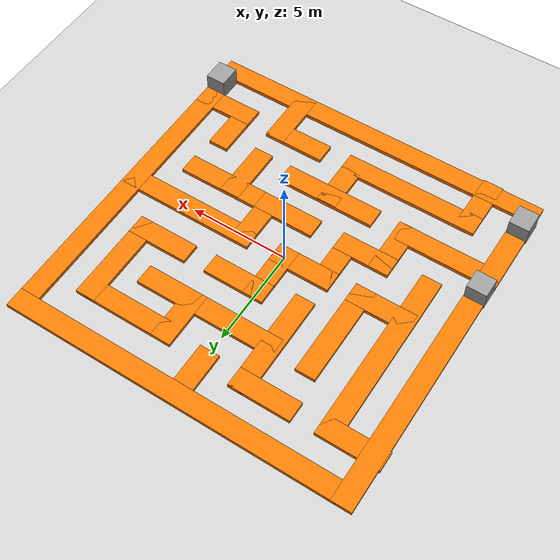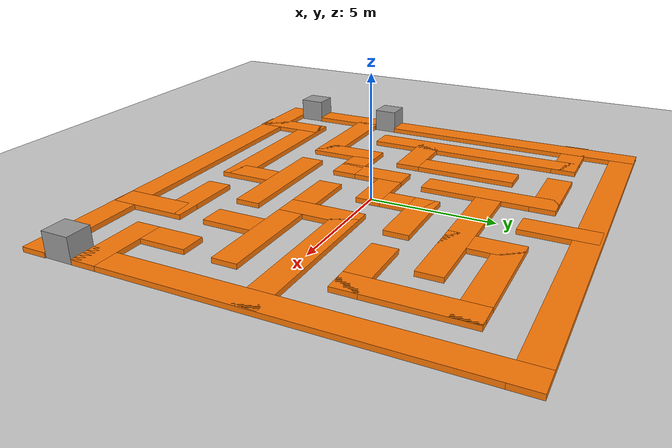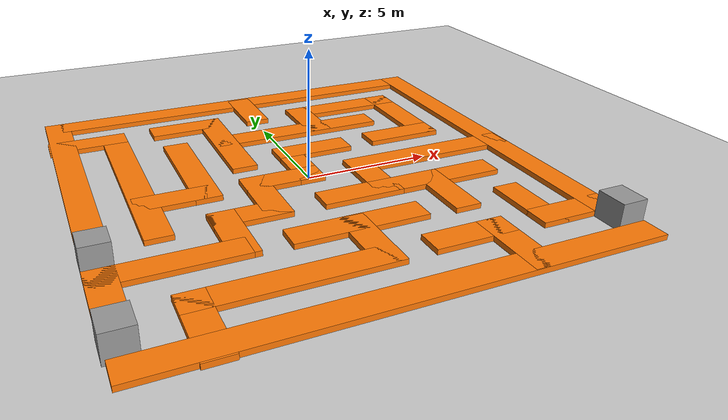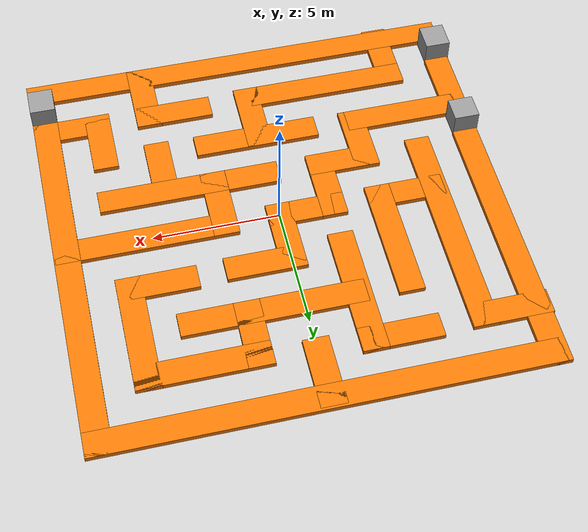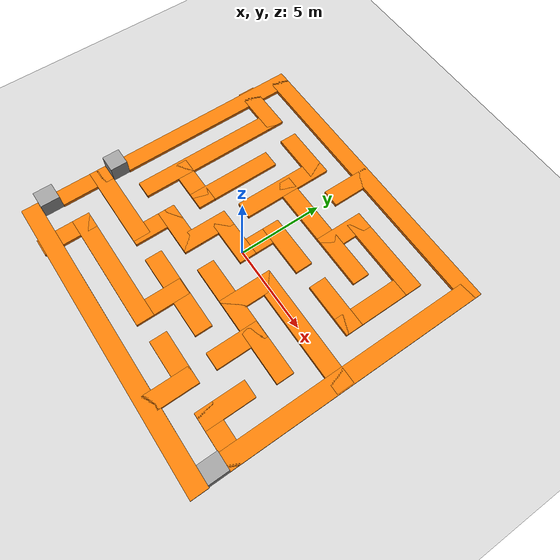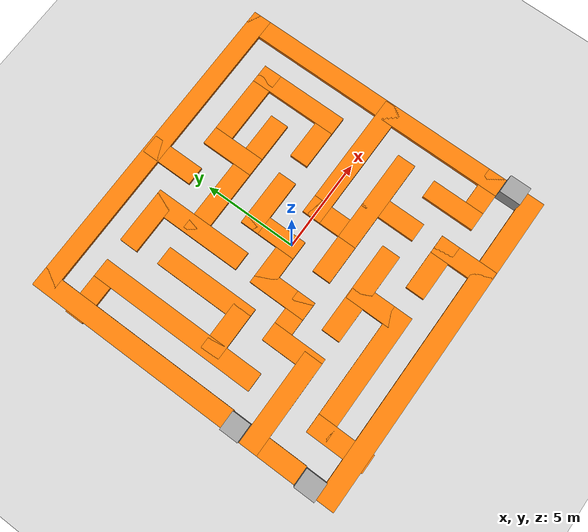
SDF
<sdf version="1.7">
 <world name="default">
  <model name="ground_plane">
   <static>1</static>
   <link name="link">
    <collision name="collision">
     <geometry><plane><normal>0 0 1</normal><size>100 100</size></plane></geometry>
     <surface><friction><ode><mu>100</mu><mu2>50</mu2></ode></friction></surface>
    </collision>
    <visual name="visual">
     <cast_shadows>0</cast_shadows>
     <geometry><plane><normal>0 0 1</normal><size>100 100</size></plane></geometry>
     <material>
      <script><uri>file://media/materials/scripts/gazebo.material</uri><name>Gazebo/Grey</name></script>
     </material>
    </visual>
   </link>
  </model>
  <model name="maze_1m_path">
   <pose>0.009148 0.01503 0 0 -0 0</pose>
   <link name="Wall_0">
    <collision name="Wall_0_Collision">
     <geometry><box><size>17.6001 1 0.2</size></box></geometry>
     <pose>0 0 0.1 0 -0 0</pose>
    </collision>
    <visual name="Wall_0_Visual">
     <pose>0 0 0.1 0 -0 0</pose>
     <geometry><box><size>17.6001 1 0.2</size></box></geometry>
     <material>
      <script><uri>file://media/materials/scripts/gazebo.material</uri><name>Gazebo/Grey</name></script>
      <ambient>0.996078 0.47451 0.0196078 1</ambient>
     </material>
     <meta><layer>0</layer></meta>
    </visual>
    <pose>0.010502 8.27796 0 0 -0 0</pose>
   </link>
   <link name="Wall_12">
    <collision name="Wall_12_Collision">
     <geometry><box><size>11.255 1 0.2</size></box></geometry>
     <pose>0 0 0.1 0 -0 0</pose>
    </collision>
    <visual name="Wall_12_Visual">
     <pose>0 0 0.1 0 -0 0</pose>
     <geometry><box><size>11.255 1 0.2</size></box></geometry>
     <material>
      <script><uri>file://media/materials/scripts/gazebo.material</uri><name>Gazebo/Grey</name></script>
      <ambient>0.996078 0.47451 0.0196078 1</ambient>
     </material>
     <meta><layer>0</layer></meta>
    </visual>
    <pose>-8.2895 3.15046 0 0 -0 -1.5708</pose>
   </link>
   <link name="Wall_16">
    <collision name="Wall_16_Collision">
     <geometry><box><size>3.10015 1 0.2</size></box></geometry>
     <pose>0 0 0.1 0 -0 0</pose>
    </collision>
    <visual name="Wall_16_Visual">
     <pose>0 0 0.1 0 -0 0</pose>
     <geometry><box><size>3.10015 1 0.2</size></box></geometry>
     <material>
      <script><uri>file://media/materials/scripts/gazebo.material</uri><name>Gazebo/Grey</name></script>
      <ambient>0.996078 0.47451 0.0196078 1</ambient>
     </material>
     <meta><layer>0</layer></meta>
    </visual>
    <pose>-8.3225 -5.04305 0 0 -0 -1.5708</pose>
   </link>
   <link name="Wall_18">
    <collision name="Wall_18_Collision">
     <geometry><box><size>5.1 1 0.2</size></box></geometry>
     <pose>0 0 0.1 0 -0 0</pose>
    </collision>
    <visual name="Wall_18_Visual">
     <pose>0 0 0.1 0 -0 0</pose>
     <geometry><box><size>5.1 1 0.2</size></box></geometry>
     <material>
      <script><uri>file://media/materials/scripts/gazebo.material</uri><name>Gazebo/Grey</name></script>
      <ambient>0.996078 0.47451 0.0196078 1</ambient>
     </material>
     <meta><layer>0</layer></meta>
    </visual>
    <pose>-6.2725 -3.99304 0 0 -0 0</pose>
   </link>
   <link name="Wall_2">
    <collision name="Wall_2_Collision">
     <geometry><box><size>15.35 1 0.2</size></box></geometry>
     <pose>0 0 0.1 0 -0 0</pose>
    </collision>
    <visual name="Wall_2_Visual">
     <pose>0 0 0.1 0 -0 0</pose>
     <geometry><box><size>15.35 1 0.2</size></box></geometry>
     <material>
      <script><uri>file://media/materials/scripts/gazebo.material</uri><name>Gazebo/Grey</name></script>
      <ambient>0.996078 0.47451 0.0196078 1</ambient>
     </material>
     <meta><layer>0</layer></meta>
    </visual>
    <pose>8.3105 1.10295 0 0 -0 -1.5708</pose>
   </link>
   <link name="Wall_23">
    <collision name="Wall_23_Collision">
     <geometry><box><size>3.10023 1 0.2</size></box></geometry>
     <pose>0 0 0.1 0 -0 0</pose>
    </collision>
    <visual name="Wall_23_Visual">
     <pose>0 0 0.1 0 -0 0</pose>
     <geometry><box><size>3.10023 1 0.2</size></box></geometry>
     <material>
      <script><uri>file://media/materials/scripts/gazebo.material</uri><name>Gazebo/Grey</name></script>
      <ambient>0.996078 0.47451 0.0196078 1</ambient>
     </material>
     <meta><layer>0</layer></meta>
    </visual>
    <pose>-7.2955 6.18295 0 0 -0 0</pose>
   </link>
   <link name="Wall_25">
    <collision name="Wall_25_Collision">
     <geometry><box><size>9.16 1 0.2</size></box></geometry>
     <pose>0 0 0.1 0 -0 0</pose>
    </collision>
    <visual name="Wall_25_Visual">
     <pose>0 0 0.1 0 -0 0</pose>
     <geometry><box><size>9.16 1 0.2</size></box></geometry>
     <material>
      <script><uri>file://media/materials/scripts/gazebo.material</uri><name>Gazebo/Grey</name></script>
      <ambient>0.996078 0.47451 0.0196078 1</ambient>
     </material>
     <meta><layer>0</layer></meta>
    </visual>
    <pose>-6.2455 2.10296 0 0 -0 -1.5708</pose>
   </link>
   <link name="Wall_27">
    <collision name="Wall_27_Collision">
     <geometry><box><size>3.10034 1 0.2</size></box></geometry>
     <pose>0 0 0.1 0 -0 0</pose>
    </collision>
    <visual name="Wall_27_Visual">
     <pose>0 0 0.1 0 -0 0</pose>
     <geometry><box><size>3.10034 1 0.2</size></box></geometry>
     <material>
      <script><uri>file://media/materials/scripts/gazebo.material</uri><name>Gazebo/Grey</name></script>
      <ambient>0.996078 0.47451 0.0196078 1</ambient>
     </material>
     <meta><layer>0</layer></meta>
    </visual>
    <pose>-5.0665 0.021955 0 0 -0 0</pose>
   </link>
   <link name="Wall_29">
    <collision name="Wall_29_Collision">
     <geometry><box><size>5.1 1 0.2</size></box></geometry>
     <pose>0 0 0.1 0 -0 0</pose>
    </collision>
    <visual name="Wall_29_Visual">
     <pose>0 0 0.1 0 -0 0</pose>
     <geometry><box><size>5.1 1 0.2</size></box></geometry>
     <material>
      <script><uri>file://media/materials/scripts/gazebo.material</uri><name>Gazebo/Grey</name></script>
      <ambient>0.996078 0.47451 0.0196078 1</ambient>
     </material>
     <meta><layer>0</layer></meta>
    </visual>
    <pose>-4.0165 2.07195 0 0 -0 1.5708</pose>
   </link>
   <link name="Wall_31">
    <collision name="Wall_31_Collision">
     <geometry><box><size>3.10035 1 0.2</size></box></geometry>
     <pose>0 0 0.1 0 -0 0</pose>
    </collision>
    <visual name="Wall_31_Visual">
     <pose>0 0 0.1 0 -0 0</pose>
     <geometry><box><size>3.10035 1 0.2</size></box></geometry>
     <material>
      <script><uri>file://media/materials/scripts/gazebo.material</uri><name>Gazebo/Grey</name></script>
      <ambient>0.996078 0.47451 0.0196078 1</ambient>
     </material>
     <meta><layer>0</layer></meta>
    </visual>
    <pose>-3.0965 6.28395 0 0 -0 0</pose>
   </link>
   <link name="Wall_33">
    <collision name="Wall_33_Collision">
     <geometry><box><size>5.35 1 0.2</size></box></geometry>
     <pose>0 0 0.1 0 -0 0</pose>
    </collision>
    <visual name="Wall_33_Visual">
     <pose>0 0 0.1 0 -0 0</pose>
     <geometry><box><size>5.35 1 0.2</size></box></geometry>
     <material>
      <script><uri>file://media/materials/scripts/gazebo.material</uri><name>Gazebo/Grey</name></script>
      <ambient>0.996078 0.47451 0.0196078 1</ambient>
     </material>
     <meta><layer>0</layer></meta>
    </visual>
    <pose>-2.0465 4.10895 0 0 -0 -1.5708</pose>
   </link>
   <link name="Wall_35">
    <collision name="Wall_35_Collision">
     <geometry><box><size>7.09997 1 0.2</size></box></geometry>
     <pose>0 0 0.1 0 -0 0</pose>
    </collision>
    <visual name="Wall_35_Visual">
     <pose>0 0 0.1 0 -0 0</pose>
     <geometry><box><size>7.09997 1 0.2</size></box></geometry>
     <material>
      <script><uri>file://media/materials/scripts/gazebo.material</uri><name>Gazebo/Grey</name></script>
      <ambient>0.996078 0.47451 0.0196078 1</ambient>
     </material>
     <meta><layer>0</layer></meta>
    </visual>
    <pose>1.1905 4.20895 0 0 -0 0</pose>
   </link>
   <link name="Wall_37">
    <collision name="Wall_37_Collision">
     <geometry><box><size>2.85006 1 0.2</size></box></geometry>
     <pose>0 0 0.1 0 -0 0</pose>
    </collision>
    <visual name="Wall_37_Visual">
     <pose>0 0 0.1 0 -0 0</pose>
     <geometry><box><size>2.85006 1 0.2</size></box></geometry>
     <material>
      <script><uri>file://media/materials/scripts/gazebo.material</uri><name>Gazebo/Grey</name></script>
      <ambient>0.996078 0.47451 0.0196078 1</ambient>
     </material>
     <meta><layer>0</layer></meta>
    </visual>
    <pose>0.004502 7.25896 0 0 -0 -1.5708</pose>
   </link>
   <link name="Wall_39">
    <collision name="Wall_39_Collision">
     <geometry><box><size>2.84974 1 0.2</size></box></geometry>
     <pose>0 0 0.1 0 -0 0</pose>
    </collision>
    <visual name="Wall_39_Visual">
     <pose>0 0 0.1 0 -0 0</pose>
     <geometry><box><size>2.84974 1 0.2</size></box></geometry>
     <material>
      <script><uri>file://media/materials/scripts/gazebo.material</uri><name>Gazebo/Grey</name></script>
      <ambient>0.996078 0.47451 0.0196078 1</ambient>
     </material>
     <meta><layer>0</layer></meta>
    </visual>
    <pose>2.1155 5.13396 0 0 -0 1.5708</pose>
   </link>
   <link name="Wall_4">
    <collision name="Wall_4_Collision">
     <geometry><box><size>3.1 1 0.2</size></box></geometry>
     <pose>0 0 0.1 0 -0 0</pose>
    </collision>
    <visual name="Wall_4_Visual">
     <pose>0 0 0.1 0 -0 0</pose>
     <geometry><box><size>3.1 1 0.2</size></box></geometry>
     <material>
      <script><uri>file://media/materials/scripts/gazebo.material</uri><name>Gazebo/Grey</name></script>
      <ambient>0.996078 0.47451 0.0196078 1</ambient>
     </material>
     <meta><layer>0</layer></meta>
    </visual>
    <pose>7.2605 -6.07205 0 0 -0 3.14159</pose>
   </link>
   <link name="Wall_41">
    <collision name="Wall_41_Collision">
     <geometry><box><size>5.1 1 0.2</size></box></geometry>
     <pose>0 0 0.1 0 -0 0</pose>
    </collision>
    <visual name="Wall_41_Visual">
     <pose>0 0 0.1 0 -0 0</pose>
     <geometry><box><size>5.1 1 0.2</size></box></geometry>
     <material>
      <script><uri>file://media/materials/scripts/gazebo.material</uri><name>Gazebo/Grey</name></script>
      <ambient>0.996078 0.47451 0.0196078 1</ambient>
     </material>
     <meta><layer>0</layer></meta>
    </visual>
    <pose>4.1655 6.05896 0 0 -0 0</pose>
   </link>
   <link name="Wall_43">
    <collision name="Wall_43_Collision">
     <geometry><box><size>4.85 1 0.2</size></box></geometry>
     <pose>0 0 0.1 0 -0 0</pose>
    </collision>
    <visual name="Wall_43_Visual">
     <pose>0 0 0.1 0 -0 0</pose>
     <geometry><box><size>4.85 1 0.2</size></box></geometry>
     <material>
      <script><uri>file://media/materials/scripts/gazebo.material</uri><name>Gazebo/Grey</name></script>
      <ambient>0.996078 0.47451 0.0196078 1</ambient>
     </material>
     <meta><layer>0</layer></meta>
    </visual>
    <pose>6.2155 4.13396 0 0 -0 -1.5708</pose>
   </link>
   <link name="Wall_45">
    <collision name="Wall_45_Collision">
     <geometry><box><size>3.1 1 0.2</size></box></geometry>
     <pose>0 0 0.1 0 -0 0</pose>
    </collision>
    <visual name="Wall_45_Visual">
     <pose>0 0 0.1 0 -0 0</pose>
     <geometry><box><size>3.1 1 0.2</size></box></geometry>
     <material>
      <script><uri>file://media/materials/scripts/gazebo.material</uri><name>Gazebo/Grey</name></script>
      <ambient>0.996078 0.47451 0.0196078 1</ambient>
     </material>
     <meta><layer>0</layer></meta>
    </visual>
    <pose>5.1655 2.20896 0 0 -0 3.14159</pose>
   </link>
   <link name="Wall_47">
    <collision name="Wall_47_Collision">
     <geometry><box><size>3.10001 1 0.2</size></box></geometry>
     <pose>0 0 0.1 0 -0 0</pose>
    </collision>
    <visual name="Wall_47_Visual">
     <pose>0 0 0.1 0 -0 0</pose>
     <geometry><box><size>3.10001 1 0.2</size></box></geometry>
     <material>
      <script><uri>file://media/materials/scripts/gazebo.material</uri><name>Gazebo/Grey</name></script>
      <ambient>0.996078 0.47451 0.0196078 1</ambient>
     </material>
     <meta><layer>0</layer></meta>
    </visual>
    <pose>1.0305 2.13295 0 0 -0 3.14159</pose>
   </link>
   <link name="Wall_49">
    <collision name="Wall_49_Collision">
     <geometry><box><size>3.1 1 0.2</size></box></geometry>
     <pose>0 0 0.1 0 -0 0</pose>
    </collision>
    <visual name="Wall_49_Visual">
     <pose>0 0 0.1 0 -0 0</pose>
     <geometry><box><size>3.1 1 0.2</size></box></geometry>
     <material>
      <script><uri>file://media/materials/scripts/gazebo.material</uri><name>Gazebo/Grey</name></script>
      <ambient>0.996078 0.47451 0.0196078 1</ambient>
     </material>
     <meta><layer>0</layer></meta>
    </visual>
    <pose>-0.019498 1.08295 0 0 -0 -1.5708</pose>
   </link>
   <link name="Wall_51">
    <collision name="Wall_51_Collision">
     <geometry><box><size>3.1 1 0.2</size></box></geometry>
     <pose>0 0 0.1 0 -0 0</pose>
    </collision>
    <visual name="Wall_51_Visual">
     <pose>0 0 0.1 0 -0 0</pose>
     <geometry><box><size>3.1 1 0.2</size></box></geometry>
     <material>
      <script><uri>file://media/materials/scripts/gazebo.material</uri><name>Gazebo/Grey</name></script>
      <ambient>0.996078 0.47451 0.0196078 1</ambient>
     </material>
     <meta><layer>0</layer></meta>
    </visual>
    <pose>-1.0695 0.032955 0 0 -0 3.14159</pose>
   </link>
   <link name="Wall_53">
    <collision name="Wall_53_Collision">
     <geometry><box><size>3.1 1 0.2</size></box></geometry>
     <pose>0 0 0.1 0 -0 0</pose>
    </collision>
    <visual name="Wall_53_Visual">
     <pose>0 0 0.1 0 -0 0</pose>
     <geometry><box><size>3.1 1 0.2</size></box></geometry>
     <material>
      <script><uri>file://media/materials/scripts/gazebo.material</uri><name>Gazebo/Grey</name></script>
      <ambient>0.996078 0.47451 0.0196078 1</ambient>
     </material>
     <meta><layer>0</layer></meta>
    </visual>
    <pose>-2.1195 -1.01704 0 0 -0 -1.5708</pose>
   </link>
   <link name="Wall_55">
    <collision name="Wall_55_Collision">
     <geometry><box><size>2.85 1 0.2</size></box></geometry>
     <pose>0 0 0.1 0 -0 0</pose>
    </collision>
    <visual name="Wall_55_Visual">
     <pose>0 0 0.1 0 -0 0</pose>
     <geometry><box><size>2.85 1 0.2</size></box></geometry>
     <material>
      <script><uri>file://media/materials/scripts/gazebo.material</uri><name>Gazebo/Grey</name></script>
      <ambient>0.996078 0.47451 0.0196078 1</ambient>
     </material>
     <meta><layer>0</layer></meta>
    </visual>
    <pose>-3.0445 -2.06704 0 0 -0 3.14159</pose>
   </link>
   <link name="Wall_57">
    <collision name="Wall_57_Collision">
     <geometry><box><size>2.921 1 0.2</size></box></geometry>
     <pose>0 0 0.1 0 -0 0</pose>
    </collision>
    <visual name="Wall_57_Visual">
     <pose>0 0 0.1 0 -0 0</pose>
     <geometry><box><size>2.921 1 0.2</size></box></geometry>
     <material>
      <script><uri>file://media/materials/scripts/gazebo.material</uri><name>Gazebo/Grey</name></script>
      <ambient>0.996078 0.47451 0.0196078 1</ambient>
     </material>
     <meta><layer>0</layer></meta>
    </visual>
    <pose>-3.9695 -3.02754 0 0 -0 -1.5708</pose>
   </link>
   <link name="Wall_59">
    <collision name="Wall_59_Collision">
     <geometry><box><size>7.09965 1 0.2</size></box></geometry>
     <pose>0 0 0.1 0 -0 0</pose>
    </collision>
    <visual name="Wall_59_Visual">
     <pose>0 0 0.1 0 -0 0</pose>
     <geometry><box><size>7.09965 1 0.2</size></box></geometry>
     <material>
      <script><uri>file://media/materials/scripts/gazebo.material</uri><name>Gazebo/Grey</name></script>
      <ambient>0.996078 0.47451 0.0196078 1</ambient>
     </material>
     <meta><layer>0</layer></meta>
    </visual>
    <pose>5.2165 0.037955 0 0 -0 3.14159</pose>
   </link>
   <link name="Wall_6">
    <collision name="Wall_6_Collision">
     <geometry><box><size>2.85 1 0.2</size></box></geometry>
     <pose>0 0 0.1 0 -0 0</pose>
    </collision>
    <visual name="Wall_6_Visual">
     <pose>0 0 0.1 0 -0 0</pose>
     <geometry><box><size>2.85 1 0.2</size></box></geometry>
     <material>
      <script><uri>file://media/materials/scripts/gazebo.material</uri><name>Gazebo/Grey</name></script>
      <ambient>0.996078 0.47451 0.0196078 1</ambient>
     </material>
     <meta><layer>0</layer></meta>
    </visual>
    <pose>6.2105 -5.14705 0 0 -0 1.5708</pose>
   </link>
   <link name="Wall_60">
    <collision name="Wall_60_Collision">
     <geometry><box><size>3.09991 1 0.2</size></box></geometry>
     <pose>0 0 0.1 0 -0 0</pose>
    </collision>
    <visual name="Wall_60_Visual">
     <pose>0 0 0.1 0 -0 0</pose>
     <geometry><box><size>3.09991 1 0.2</size></box></geometry>
     <material>
      <script><uri>file://media/materials/scripts/gazebo.material</uri><name>Gazebo/Grey</name></script>
      <ambient>0.996078 0.47451 0.0196078 1</ambient>
     </material>
     <meta><layer>0</layer></meta>
    </visual>
    <pose>2.1665 -1.01205 0 0 -0 -1.5708</pose>
   </link>
   <link name="Wall_61">
    <collision name="Wall_61_Collision">
     <geometry><box><size>5.10035 1 0.2</size></box></geometry>
     <pose>0 0 0.1 0 -0 0</pose>
    </collision>
    <visual name="Wall_61_Visual">
     <pose>0 0 0.1 0 -0 0</pose>
     <geometry><box><size>5.10035 1 0.2</size></box></geometry>
     <material>
      <script><uri>file://media/materials/scripts/gazebo.material</uri><name>Gazebo/Grey</name></script>
      <ambient>0.996078 0.47451 0.0196078 1</ambient>
     </material>
     <meta><layer>0</layer></meta>
    </visual>
    <pose>4.2165 -2.06204 0 0 -0 0</pose>
   </link>
   <link name="Wall_63">
    <collision name="Wall_63_Collision">
     <geometry><box><size>2.986 1 0.2</size></box></geometry>
     <pose>0 0 0.1 0 -0 0</pose>
    </collision>
    <visual name="Wall_63_Visual">
     <pose>0 0 0.1 0 -0 0</pose>
     <geometry><box><size>2.986 1 0.2</size></box></geometry>
     <material>
      <script><uri>file://media/materials/scripts/gazebo.material</uri><name>Gazebo/Grey</name></script>
      <ambient>0.996078 0.47451 0.0196078 1</ambient>
     </material>
     <meta><layer>0</layer></meta>
    </visual>
    <pose>4.0805 -3.07404 0 0 -0 -1.5708</pose>
   </link>
   <link name="Wall_65">
    <collision name="Wall_65_Collision">
     <geometry><box><size>5 1 0.2</size></box></geometry>
     <pose>0 0 0.1 0 -0 0</pose>
    </collision>
    <visual name="Wall_65_Visual">
     <pose>0 0 0.1 0 -0 0</pose>
     <geometry><box><size>5 1 0.2</size></box></geometry>
     <material>
      <script><uri>file://media/materials/scripts/gazebo.material</uri><name>Gazebo/Grey</name></script>
      <ambient>0.996078 0.47451 0.0196078 1</ambient>
     </material>
     <meta><layer>0</layer></meta>
    </visual>
    <pose>0.054502 -4.04305 0 0 -0 3.14159</pose>
   </link>
   <link name="Wall_67">
    <collision name="Wall_67_Collision">
     <geometry><box><size>3.09982 1 0.2</size></box></geometry>
     <pose>0 0 0.1 0 -0 0</pose>
    </collision>
    <visual name="Wall_67_Visual">
     <pose>0 0 0.1 0 -0 0</pose>
     <geometry><box><size>3.09982 1 0.2</size></box></geometry>
     <material>
      <script><uri>file://media/materials/scripts/gazebo.material</uri><name>Gazebo/Grey</name></script>
      <ambient>0.996078 0.47451 0.0196078 1</ambient>
     </material>
     <meta><layer>0</layer></meta>
    </visual>
    <pose>-0.035498 -5.12805 0 0 -0 -1.5708</pose>
   </link>
   <link name="Wall_68">
    <collision name="Wall_68_Collision">
     <geometry><box><size>7.09983 1 0.2</size></box></geometry>
     <pose>0 0 0.1 0 -0 0</pose>
    </collision>
    <visual name="Wall_68_Visual">
     <pose>0 0 0.1 0 -0 0</pose>
     <geometry><box><size>7.09983 1 0.2</size></box></geometry>
     <material>
      <script><uri>file://media/materials/scripts/gazebo.material</uri><name>Gazebo/Grey</name></script>
      <ambient>0.996078 0.47451 0.0196078 1</ambient>
     </material>
     <meta><layer>0</layer></meta>
    </visual>
    <pose>-3.0855 -6.17805 0 0 -0 3.14159</pose>
   </link>
   <link name="Wall_69">
    <collision name="Wall_69_Collision">
     <geometry><box><size>3.09982 1 0.2</size></box></geometry>
     <pose>0 0 0.1 0 -0 0</pose>
    </collision>
    <visual name="Wall_69_Visual">
     <pose>0 0 0.1 0 -0 0</pose>
     <geometry><box><size>3.09982 1 0.2</size></box></geometry>
     <material>
      <script><uri>file://media/materials/scripts/gazebo.material</uri><name>Gazebo/Grey</name></script>
      <ambient>0.996078 0.47451 0.0196078 1</ambient>
     </material>
     <meta><layer>0</layer></meta>
    </visual>
    <pose>-6.1355 -7.22804 0 0 -0 -1.5708</pose>
   </link>
   <link name="Wall_71">
    <collision name="Wall_71_Collision">
     <geometry><box><size>3.09971 1 0.2</size></box></geometry>
     <pose>0 0 0.1 0 -0 0</pose>
    </collision>
    <visual name="Wall_71_Visual">
     <pose>0 0 0.1 0 -0 0</pose>
     <geometry><box><size>3.09971 1 0.2</size></box></geometry>
     <material>
      <script><uri>file://media/materials/scripts/gazebo.material</uri><name>Gazebo/Grey</name></script>
      <ambient>0.996078 0.47451 0.0196078 1</ambient>
     </material>
     <meta><layer>0</layer></meta>
    </visual>
    <pose>3.0905 -6.08305 0 0 -0 0</pose>
   </link>
   <link name="Wall_72">
    <collision name="Wall_72_Collision">
     <geometry><box><size>3.10001 1 0.2</size></box></geometry>
     <pose>0 0 0.1 0 -0 0</pose>
    </collision>
    <visual name="Wall_72_Visual">
     <pose>0 0 0.1 0 -0 0</pose>
     <geometry><box><size>3.10001 1 0.2</size></box></geometry>
     <material>
      <script><uri>file://media/materials/scripts/gazebo.material</uri><name>Gazebo/Grey</name></script>
      <ambient>0.996078 0.47451 0.0196078 1</ambient>
     </material>
     <meta><layer>0</layer></meta>
    </visual>
    <pose>4.1405 -7.13305 0 0 -0 -1.5708</pose>
   </link>
   <link name="Wall_74">
    <collision name="Wall_74_Collision">
     <geometry><box><size>3.09965 1 0.2</size></box></geometry>
     <pose>0 0 0.1 0 -0 0</pose>
    </collision>
    <visual name="Wall_74_Visual">
     <pose>0 0 0.1 0 -0 0</pose>
     <geometry><box><size>3.09965 1 0.2</size></box></geometry>
     <material>
      <script><uri>file://media/materials/scripts/gazebo.material</uri><name>Gazebo/Grey</name></script>
      <ambient>0.996078 0.47451 0.0196078 1</ambient>
     </material>
     <meta><layer>0</layer></meta>
    </visual>
    <pose>1.1165 -2.06204 0 0 -0 3.14159</pose>
   </link>
   <link name="Wall_8">
    <collision name="Wall_8_Collision">
     <geometry><box><size>17.6002 1 0.2</size></box></geometry>
     <pose>0 0 0.1 0 -0 0</pose>
    </collision>
    <visual name="Wall_8_Visual">
     <pose>0 0 0.1 0 -0 0</pose>
     <geometry><box><size>17.6002 1 0.2</size></box></geometry>
     <material>
      <script><uri>file://media/materials/scripts/gazebo.material</uri><name>Gazebo/Grey</name></script>
      <ambient>0.996078 0.47451 0.0196078 1</ambient>
     </material>
     <meta><layer>0</layer></meta>
    </visual>
    <pose>0.045502 -8.21104 0 0 -0 0</pose>
   </link>
   <static>1</static>
  </model>
  <model name="unit_box">
   <pose>-8.34929 -7.1296 0.5 0 0 -3e-06</pose>
   <link name="link">
    <inertial>
     <mass>1</mass>
     <inertia>
      <ixx>0.166667</ixx>
      <ixy>0</ixy>
      <ixz>0</ixz>
      <iyy>0.166667</iyy>
      <iyz>0</iyz>
      <izz>0.166667</izz>
     </inertia>
    </inertial>
    <collision name="collision"><geometry><box><size>1 1.10295 1</size></box></geometry></collision>
    <visual name="visual">
     <geometry><box><size>1 1.10295 1</size></box></geometry>
     <material>
      <script><name>Gazebo/Grey</name><uri>file://media/materials/scripts/gazebo.material</uri></script>
     </material>
    </visual>
   </link>
  </model>
  <model name="unit_box_0">
   <pose>-8.31093 -2.9636 0.499995 0 1e-05 -3e-06</pose>
   <link name="link">
    <inertial>
     <mass>1</mass>
     <inertia>
      <ixx>0.166667</ixx>
      <ixy>0</ixy>
      <ixz>0</ixz>
      <iyy>0.166667</iyy>
      <iyz>0</iyz>
      <izz>0.166667</izz>
     </inertia>
    </inertial>
    <collision name="collision"><geometry><box><size>1 1 1</size></box></geometry></collision>
    <visual name="visual">
     <geometry><box><size>1 1 1</size></box></geometry>
     <material>
      <script><name>Gazebo/Grey</name><uri>file://media/materials/scripts/gazebo.material</uri></script>
     </material>
    </visual>
   </link>
  </model>
  <model name="unit_box_1">
   <pose>8.31932 -7.12305 0.499995 0 -1e-05 1e-05</pose>
   <link name="link">
    <inertial>
     <mass>1</mass>
     <inertia>
      <ixx>0.166667</ixx>
      <ixy>0</ixy>
      <ixz>0</ixz>
      <iyy>0.166667</iyy>
      <iyz>0</iyz>
      <izz>0.166667</izz>
     </inertia>
    </inertial>
    <collision name="collision"><geometry><box><size>1 1.12784 1</size></box></geometry></collision>
    <visual name="visual">
     <geometry><box><size>1 1.12784 1</size></box></geometry>
     <material>
      <script><name>Gazebo/Grey</name><uri>file://media/materials/scripts/gazebo.material</uri></script>
     </material>
    </visual>
   </link>
  </model>
 </world>
</sdf>
